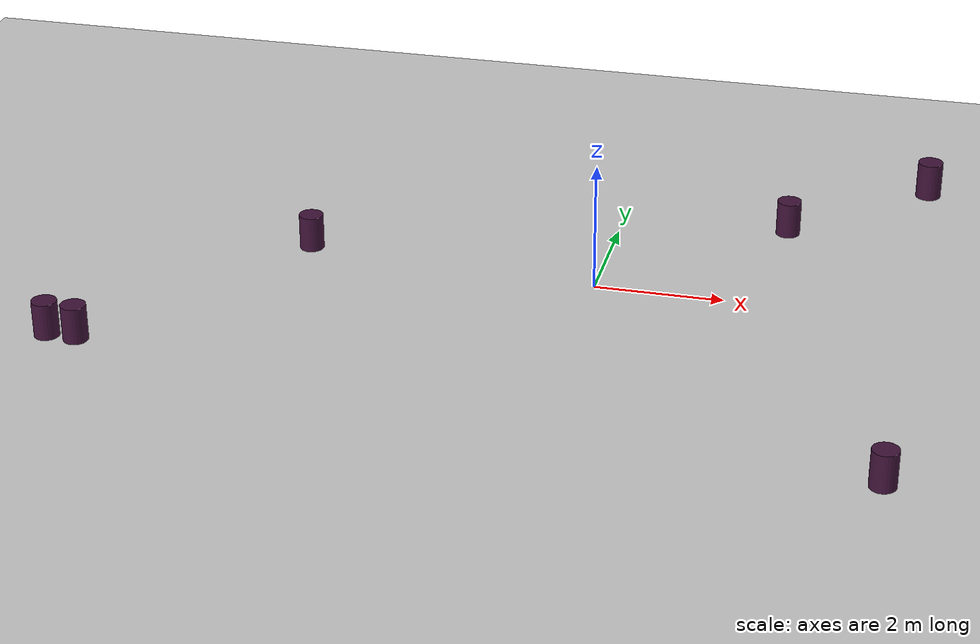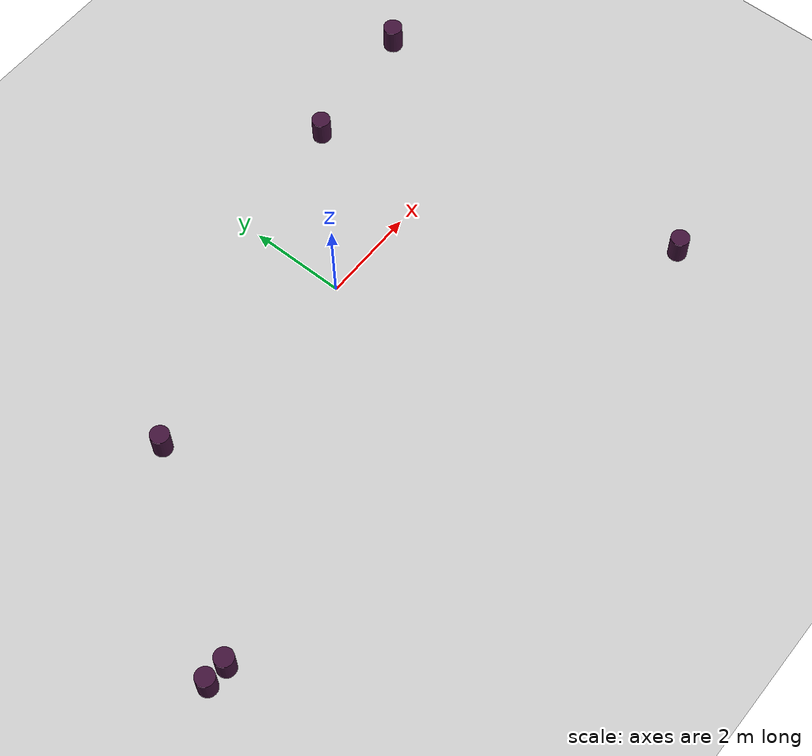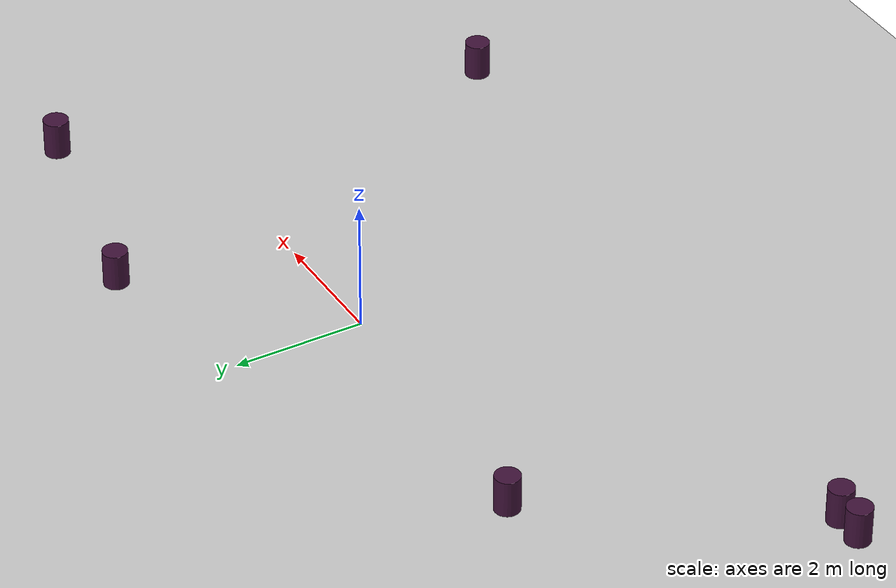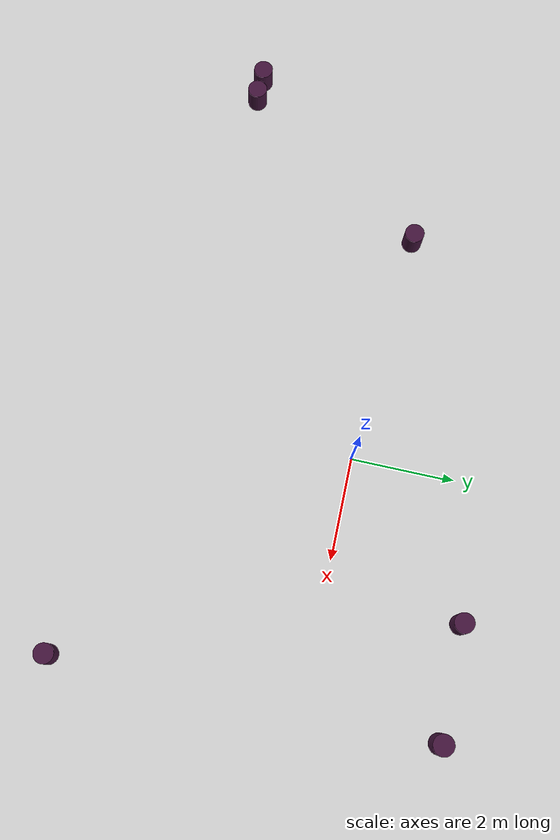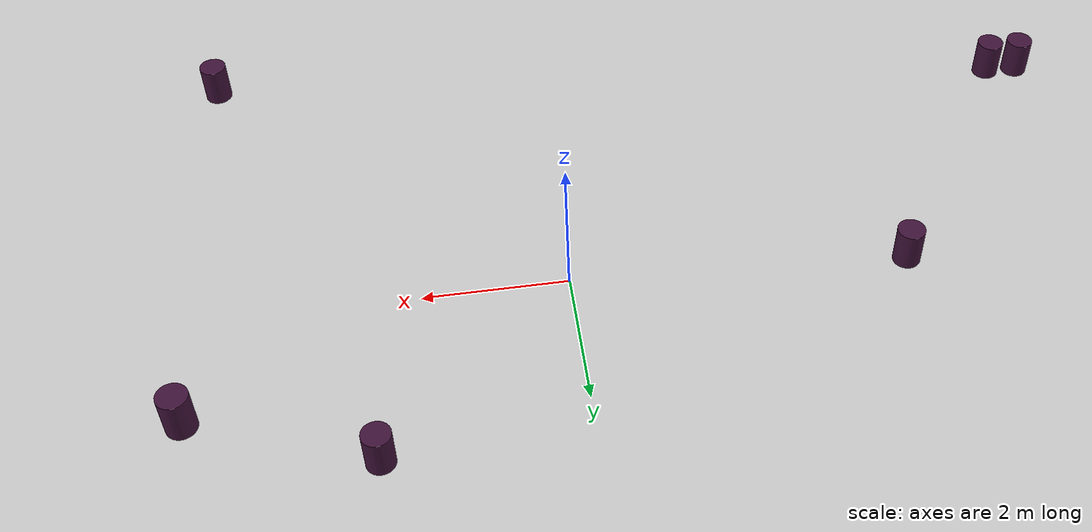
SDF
<sdf version="1.7">
 <world name="default">
  <light name="sun" type="directional">
   <pose>0 0 10 0 -0 0</pose>
   <diffuse>0.8 0.8 0.8 1</diffuse>
   <specular>0.2 0.2 0.2 1</specular>
   <attenuation>
    <range>1000</range>
    <constant>0.9</constant>
    <linear>0.01</linear>
    <quadratic>0.001</quadratic>
   </attenuation>
   <direction>-0.5 0.1 -0.9</direction>
   <spot><inner_angle>0</inner_angle><outer_angle>0</outer_angle><falloff>0</falloff></spot>
  </light>
  <model name="ground_plane">
   <static>1</static>
   <link name="link">
    <collision name="collision">
     <geometry><plane><normal>0 0 1</normal><size>100 100</size></plane></geometry>
     <surface><friction><ode><mu>100</mu><mu2>50</mu2></ode></friction></surface>
    </collision>
    <visual name="visual">
     <cast_shadows>0</cast_shadows>
     <geometry><plane><normal>0 0 1</normal><size>100 100</size></plane></geometry>
     <material>
      <script><uri>file://media/materials/scripts/gazebo.material</uri><name>Gazebo/Grey</name></script>
     </material>
    </visual>
   </link>
  </model>
  <physics type="ode">
   <real_time_update_rate>1000</real_time_update_rate>
   <max_step_size>0.001</max_step_size>
   <real_time_factor>1</real_time_factor>
   <ode>
    <solver>
     <type>quick</type>
     <iters>150</iters>
     <precon_iters>0</precon_iters>
     <sor>1.4</sor>
     <use_dynamic_moi_rescaling>1</use_dynamic_moi_rescaling>
    </solver>
    <constraints>
     <cfm>1e-05</cfm>
     <erp>0.2</erp>
     <contact_max_correcting_vel>2000</contact_max_correcting_vel>
     <contact_surface_layer>0.01</contact_surface_layer>
    </constraints>
   </ode>
  </physics>
  <scene><ambient>0.4 0.4 0.4 1</ambient><background>0.7 0.7 0.7 1</background><shadows>1</shadows></scene>
  <gravity>0 0 -9.8</gravity>
  <magnetic_field>6e-06 2.3e-05 -4.2e-05</magnetic_field>
  <atmosphere type="adiabatic"/>
  <spherical_coordinates>
   <surface_model>EARTH_WGS84</surface_model>
   <latitude_deg>0</latitude_deg>
   <longitude_deg>0</longitude_deg>
   <elevation>0</elevation>
   <heading_deg>0</heading_deg>
  </spherical_coordinates>
  <model name="cylinder_plant">
   <link name="link">
    <inertial>
     <mass>1</mass>
     <inertia><ixx>0.145833</ixx><ixy>0</ixy><ixz>0</ixz><iyy>0.145833</iyy><iyz>0</iyz><izz>0.125</izz></inertia>
    </inertial>
    <visual name="visual">
     <geometry><cylinder><radius>0.191261</radius><length>0.569323</length></cylinder></geometry>
     <material>
      <script><name>Gazebo/Grey</name><uri>file://media/materials/scripts/gazebo.material</uri></script>
      <shader type="pixel"><normal_map>__default__</normal_map></shader>
      <ambient>0.252 0.074 0.228 0</ambient>
      <diffuse>0.252 0.074 0.228 1</diffuse>
      <specular>0.252 0.074 0.228 1</specular>
      <emissive>0.252 0.074 0.228 1</emissive>
     </material>
    </visual>
    <collision name="collision">
     <geometry><cylinder><radius>0.191261</radius><length>0.569323</length></cylinder></geometry>
     <surface>
      <friction>
       <ode><mu>1</mu><mu2>1</mu2><fdir1>0 0 0</fdir1><slip1>0</slip1><slip2>0</slip2></ode>
       <torsional>
        <coefficient>1</coefficient>
        <patch_radius>0</patch_radius>
        <surface_radius>0</surface_radius>
        <use_patch_radius>1</use_patch_radius>
        <ode><slip>0</slip></ode>
       </torsional>
      </friction>
      <bounce><restitution_coefficient>0</restitution_coefficient><threshold>1e+06</threshold></bounce>
      <contact>
       <collide_without_contact>0</collide_without_contact>
       <collide_without_contact_bitmask>1</collide_without_contact_bitmask>
       <collide_bitmask>1</collide_bitmask>
       <ode>
        <soft_cfm>0</soft_cfm>
        <soft_erp>0.2</soft_erp>
        <kp>1e+13</kp>
        <kd>1</kd>
        <max_vel>0.01</max_vel>
        <min_depth>0</min_depth>
       </ode>
       <bullet>
        <split_impulse>1</split_impulse>
        <split_impulse_penetration_threshold>-0.01</split_impulse_penetration_threshold>
        <soft_cfm>0</soft_cfm>
        <soft_erp>0.2</soft_erp>
        <kp>1e+13</kp>
        <kd>1</kd>
       </bullet>
      </contact>
     </surface>
    </collision>
   </link>
   <static>0</static>
   <pose>-4.63178 0.316955 0.284652 0 -0 0</pose>
  </model>
  <model name="cylinder_plant_clone">
   <link name="link">
    <inertial>
     <mass>1</mass>
     <inertia><ixx>0.145833</ixx><ixy>0</ixy><ixz>0</ixz><iyy>0.145833</iyy><iyz>0</iyz><izz>0.125</izz></inertia>
    </inertial>
    <visual name="visual">
     <geometry><cylinder><radius>0.191261</radius><length>0.569323</length></cylinder></geometry>
     <material>
      <script><name>Gazebo/Grey</name><uri>file://media/materials/scripts/gazebo.material</uri></script>
      <shader type="pixel"><normal_map>__default__</normal_map></shader>
      <ambient>0.252 0.074 0.228 0</ambient>
      <diffuse>0.252 0.074 0.228 1</diffuse>
      <specular>0.252 0.074 0.228 1</specular>
      <emissive>0.252 0.074 0.228 1</emissive>
     </material>
    </visual>
    <collision name="collision">
     <geometry><cylinder><radius>0.191261</radius><length>0.569323</length></cylinder></geometry>
     <surface>
      <friction>
       <ode><mu>1</mu><mu2>1</mu2><fdir1>0 0 0</fdir1><slip1>0</slip1><slip2>0</slip2></ode>
       <torsional>
        <coefficient>1</coefficient>
        <patch_radius>0</patch_radius>
        <surface_radius>0</surface_radius>
        <use_patch_radius>1</use_patch_radius>
        <ode><slip>0</slip></ode>
       </torsional>
      </friction>
      <bounce><restitution_coefficient>0</restitution_coefficient><threshold>1e+06</threshold></bounce>
      <contact>
       <collide_without_contact>0</collide_without_contact>
       <collide_without_contact_bitmask>1</collide_without_contact_bitmask>
       <collide_bitmask>1</collide_bitmask>
       <ode>
        <soft_cfm>0</soft_cfm>
        <soft_erp>0.2</soft_erp>
        <kp>1e+13</kp>
        <kd>1</kd>
        <max_vel>0.01</max_vel>
        <min_depth>0</min_depth>
       </ode>
       <bullet>
        <split_impulse>1</split_impulse>
        <split_impulse_penetration_threshold>-0.01</split_impulse_penetration_threshold>
        <soft_cfm>0</soft_cfm>
        <soft_erp>0.2</soft_erp>
        <kp>1e+13</kp>
        <kd>1</kd>
       </bullet>
      </contact>
     </surface>
    </collision>
   </link>
   <static>0</static>
   <pose>2.64525 2.58209 0.284652 0 -0 0</pose>
  </model>
  <model name="cylinder_plant_clone_0">
   <link name="link">
    <inertial>
     <mass>1</mass>
     <inertia><ixx>0.145833</ixx><ixy>0</ixy><ixz>0</ixz><iyy>0.145833</iyy><iyz>0</iyz><izz>0.125</izz></inertia>
    </inertial>
    <visual name="visual">
     <geometry><cylinder><radius>0.191261</radius><length>0.569323</length></cylinder></geometry>
     <material>
      <script><name>Gazebo/Grey</name><uri>file://media/materials/scripts/gazebo.material</uri></script>
      <shader type="pixel"><normal_map>__default__</normal_map></shader>
      <ambient>0.252 0.074 0.228 0</ambient>
      <diffuse>0.252 0.074 0.228 1</diffuse>
      <specular>0.252 0.074 0.228 1</specular>
      <emissive>0.252 0.074 0.228 1</emissive>
     </material>
    </visual>
    <collision name="collision">
     <geometry><cylinder><radius>0.191261</radius><length>0.569323</length></cylinder></geometry>
     <surface>
      <friction>
       <ode><mu>1</mu><mu2>1</mu2><fdir1>0 0 0</fdir1><slip1>0</slip1><slip2>0</slip2></ode>
       <torsional>
        <coefficient>1</coefficient>
        <patch_radius>0</patch_radius>
        <surface_radius>0</surface_radius>
        <use_patch_radius>1</use_patch_radius>
        <ode><slip>0</slip></ode>
       </torsional>
      </friction>
      <bounce><restitution_coefficient>0</restitution_coefficient><threshold>1e+06</threshold></bounce>
      <contact>
       <collide_without_contact>0</collide_without_contact>
       <collide_without_contact_bitmask>1</collide_without_contact_bitmask>
       <collide_bitmask>1</collide_bitmask>
       <ode>
        <soft_cfm>0</soft_cfm>
        <soft_erp>0.2</soft_erp>
        <kp>1e+13</kp>
        <kd>1</kd>
        <max_vel>0.01</max_vel>
        <min_depth>0</min_depth>
       </ode>
       <bullet>
        <split_impulse>1</split_impulse>
        <split_impulse_penetration_threshold>-0.01</split_impulse_penetration_threshold>
        <soft_cfm>0</soft_cfm>
        <soft_erp>0.2</soft_erp>
        <kp>1e+13</kp>
        <kd>1</kd>
       </bullet>
      </contact>
     </surface>
    </collision>
   </link>
   <static>0</static>
   <pose>4.80191 2.42848 1.24942 2.1e-05 -8e-06 1.2e-05</pose>
  </model>
  <model name="cylinder_plant_clone_1">
   <link name="link">
    <inertial>
     <mass>1</mass>
     <inertia><ixx>0.145833</ixx><ixy>0</ixy><ixz>0</ixz><iyy>0.145833</iyy><iyz>0</iyz><izz>0.125</izz></inertia>
    </inertial>
    <visual name="visual">
     <geometry><cylinder><radius>0.191261</radius><length>0.569323</length></cylinder></geometry>
     <material>
      <script><name>Gazebo/Grey</name><uri>file://media/materials/scripts/gazebo.material</uri></script>
      <shader type="pixel"><normal_map>__default__</normal_map></shader>
      <ambient>0.252 0.074 0.228 0</ambient>
      <diffuse>0.252 0.074 0.228 1</diffuse>
      <specular>0.252 0.074 0.228 1</specular>
      <emissive>0.252 0.074 0.228 1</emissive>
     </material>
    </visual>
    <collision name="collision">
     <geometry><cylinder><radius>0.191261</radius><length>0.569323</length></cylinder></geometry>
     <surface>
      <friction>
       <ode><mu>1</mu><mu2>1</mu2><fdir1>0 0 0</fdir1><slip1>0</slip1><slip2>0</slip2></ode>
       <torsional>
        <coefficient>1</coefficient>
        <patch_radius>0</patch_radius>
        <surface_radius>0</surface_radius>
        <use_patch_radius>1</use_patch_radius>
        <ode><slip>0</slip></ode>
       </torsional>
      </friction>
      <bounce><restitution_coefficient>0</restitution_coefficient><threshold>1e+06</threshold></bounce>
      <contact>
       <collide_without_contact>0</collide_without_contact>
       <collide_without_contact_bitmask>1</collide_without_contact_bitmask>
       <collide_bitmask>1</collide_bitmask>
       <ode>
        <soft_cfm>0</soft_cfm>
        <soft_erp>0.2</soft_erp>
        <kp>1e+13</kp>
        <kd>1</kd>
        <max_vel>0.01</max_vel>
        <min_depth>0</min_depth>
       </ode>
       <bullet>
        <split_impulse>1</split_impulse>
        <split_impulse_penetration_threshold>-0.01</split_impulse_penetration_threshold>
        <soft_cfm>0</soft_cfm>
        <soft_erp>0.2</soft_erp>
        <kp>1e+13</kp>
        <kd>1</kd>
       </bullet>
      </contact>
     </surface>
    </collision>
   </link>
   <static>0</static>
   <pose>4.81674 -4.74388 0.284652 0 -0 0</pose>
  </model>
  <model name="cylinder_plant_clone_2">
   <link name="link">
    <inertial>
     <mass>1</mass>
     <inertia><ixx>0.145833</ixx><ixy>0</ixy><ixz>0</ixz><iyy>0.145833</iyy><iyz>0</iyz><izz>0.125</izz></inertia>
    </inertial>
    <visual name="visual">
     <geometry><cylinder><radius>0.191261</radius><length>0.569323</length></cylinder></geometry>
     <material>
      <script><name>Gazebo/Grey</name><uri>file://media/materials/scripts/gazebo.material</uri></script>
      <shader type="pixel"><normal_map>__default__</normal_map></shader>
      <ambient>0.252 0.074 0.228 0</ambient>
      <diffuse>0.252 0.074 0.228 1</diffuse>
      <specular>0.252 0.074 0.228 1</specular>
      <emissive>0.252 0.074 0.228 1</emissive>
     </material>
    </visual>
    <collision name="collision">
     <geometry><cylinder><radius>0.191261</radius><length>0.569323</length></cylinder></geometry>
     <surface>
      <friction>
       <ode><mu>1</mu><mu2>1</mu2><fdir1>0 0 0</fdir1><slip1>0</slip1><slip2>0</slip2></ode>
       <torsional>
        <coefficient>1</coefficient>
        <patch_radius>0</patch_radius>
        <surface_radius>0</surface_radius>
        <use_patch_radius>1</use_patch_radius>
        <ode><slip>0</slip></ode>
       </torsional>
      </friction>
      <bounce><restitution_coefficient>0</restitution_coefficient><threshold>1e+06</threshold></bounce>
      <contact>
       <collide_without_contact>0</collide_without_contact>
       <collide_without_contact_bitmask>1</collide_without_contact_bitmask>
       <collide_bitmask>1</collide_bitmask>
       <ode>
        <soft_cfm>0</soft_cfm>
        <soft_erp>0.2</soft_erp>
        <kp>1e+13</kp>
        <kd>1</kd>
        <max_vel>0.01</max_vel>
        <min_depth>0</min_depth>
       </ode>
       <bullet>
        <split_impulse>1</split_impulse>
        <split_impulse_penetration_threshold>-0.01</split_impulse_penetration_threshold>
        <soft_cfm>0</soft_cfm>
        <soft_erp>0.2</soft_erp>
        <kp>1e+13</kp>
        <kd>1</kd>
       </bullet>
      </contact>
     </surface>
    </collision>
   </link>
   <static>0</static>
   <pose>-7.53817 -3.40639 0.284652 0 -0 0</pose>
  </model>
  <model name="cylinder_plant_clone_3">
   <link name="link">
    <inertial>
     <mass>1</mass>
     <inertia><ixx>0.145833</ixx><ixy>0</ixy><ixz>0</ixz><iyy>0.145833</iyy><iyz>0</iyz><izz>0.125</izz></inertia>
    </inertial>
    <visual name="visual">
     <geometry><cylinder><radius>0.191261</radius><length>0.569323</length></cylinder></geometry>
     <material>
      <script><name>Gazebo/Grey</name><uri>file://media/materials/scripts/gazebo.material</uri></script>
      <shader type="pixel"><normal_map>__default__</normal_map></shader>
      <ambient>0.252 0.074 0.228 0</ambient>
      <diffuse>0.252 0.074 0.228 1</diffuse>
      <specular>0.252 0.074 0.228 1</specular>
      <emissive>0.252 0.074 0.228 1</emissive>
     </material>
    </visual>
    <collision name="collision">
     <geometry><cylinder><radius>0.191261</radius><length>0.569323</length></cylinder></geometry>
     <surface>
      <friction>
       <ode><mu>1</mu><mu2>1</mu2><fdir1>0 0 0</fdir1><slip1>0</slip1><slip2>0</slip2></ode>
       <torsional>
        <coefficient>1</coefficient>
        <patch_radius>0</patch_radius>
        <surface_radius>0</surface_radius>
        <use_patch_radius>1</use_patch_radius>
        <ode><slip>0</slip></ode>
       </torsional>
      </friction>
      <bounce><restitution_coefficient>0</restitution_coefficient><threshold>1e+06</threshold></bounce>
      <contact>
       <collide_without_contact>0</collide_without_contact>
       <collide_without_contact_bitmask>1</collide_without_contact_bitmask>
       <collide_bitmask>1</collide_bitmask>
       <ode>
        <soft_cfm>0</soft_cfm>
        <soft_erp>0.2</soft_erp>
        <kp>1e+13</kp>
        <kd>1</kd>
        <max_vel>0.01</max_vel>
        <min_depth>0</min_depth>
       </ode>
       <bullet>
        <split_impulse>1</split_impulse>
        <split_impulse_penetration_threshold>-0.01</split_impulse_penetration_threshold>
        <soft_cfm>0</soft_cfm>
        <soft_erp>0.2</soft_erp>
        <kp>1e+13</kp>
        <kd>1</kd>
       </bullet>
      </contact>
     </surface>
    </collision>
   </link>
   <static>0</static>
   <pose>-7.07535 -3.4271 0.284652 0 -0 0</pose>
  </model>
 </world>
</sdf>
